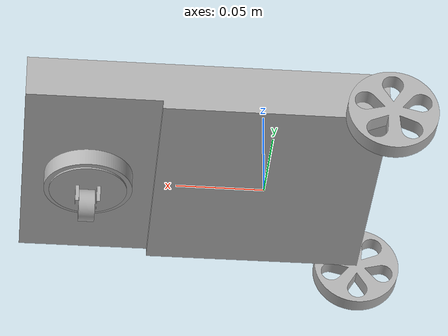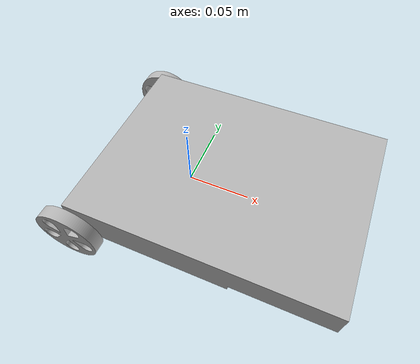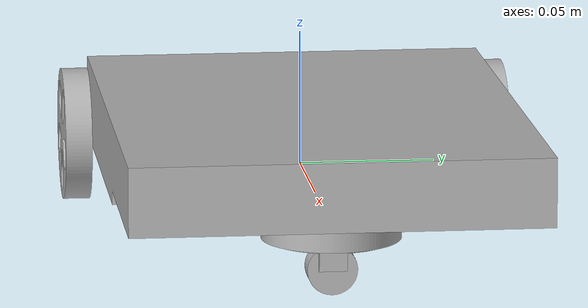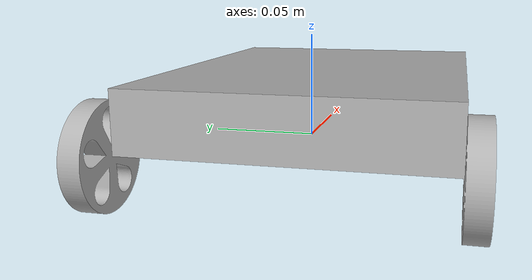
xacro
<?xml version="1.0" ?>
<robot name="test_assembly" xmlns:xacro="http://www.ros.org/wiki/xacro">

  <xacro:include filename="$(find test_assembly_description)/urdf/materials.xacro" />
  <xacro:include filename="$(find test_assembly_description)/urdf/test_assembly.trans" />
  <xacro:include filename="$(find test_assembly_description)/urdf/test_assembly.gazebo" />

  <link name="base_link">
    <inertial>
      <origin xyz="0.03333333333333332 1.0779196465456927e-17 0.01583333333333333" rpy="0 0 0"/>
      <mass value="0.8943749999999999"/>
      <inertia ixx="0.001738" iyy="0.002965" izz="0.004581" ixy="0.0" iyz="0.0" ixz="-5e-05"/>
    </inertial>
    <visual>
      <origin xyz="0 0 0" rpy="0 0 0"/>
      <geometry>
        <mesh filename="package://test_assembly_description/meshes/base_link.stl" scale="0.001 0.001 0.001"/>
      </geometry>
      <material name="silver"/>
    </visual>
    <collision>
      <origin xyz="0 0 0" rpy="0 0 0"/>
      <geometry>
        <mesh filename="package://test_assembly_description/meshes/base_link.stl" scale="0.001 0.001 0.001"/>
      </geometry>
    </collision>
  </link>

  <link name="wheel1_1">
    <inertial>
      <origin xyz="-1.3877787807814457e-17 -0.0050000000000000044 1.9686697523000058e-17" rpy="0 0 0"/>
      <mass value="0.0015782658447809456"/>
      <inertia ixx="0.0" iyy="1e-06" izz="0.0" ixy="0.0" iyz="0.0" ixz="0.0"/>
    </inertial>
    <visual>
      <origin xyz="0.0625 0.075 -0.0" rpy="0 0 0"/>
      <geometry>
        <mesh filename="package://test_assembly_description/meshes/wheel1_1.stl" scale="0.001 0.001 0.001"/>
      </geometry>
      <material name="silver"/>
    </visual>
    <collision>
      <origin xyz="0.0625 0.075 -0.0" rpy="0 0 0"/>
      <geometry>
        <mesh filename="package://test_assembly_description/meshes/wheel1_1.stl" scale="0.001 0.001 0.001"/>
      </geometry>
    </collision>
  </link>

  <link name="wheel2_1">
    <inertial>
      <origin xyz="-1.3877787807814457e-17 0.0050000000000000044 -2.856848172000131e-17" rpy="0 0 0"/>
      <mass value="0.0015782658447809456"/>
      <inertia ixx="0.0" iyy="1e-06" izz="0.0" ixy="0.0" iyz="0.0" ixz="-0.0"/>
    </inertial>
    <visual>
      <origin xyz="0.0625 -0.075 0.0" rpy="0 0 0"/>
      <geometry>
        <mesh filename="package://test_assembly_description/meshes/wheel2_1.stl" scale="0.001 0.001 0.001"/>
      </geometry>
      <material name="silver"/>
    </visual>
    <collision>
      <origin xyz="0.0625 -0.075 0.0" rpy="0 0 0"/>
      <geometry>
        <mesh filename="package://test_assembly_description/meshes/wheel2_1.stl" scale="0.001 0.001 0.001"/>
      </geometry>
    </collision>
  </link>

  <link name="castor_wheel_Component1_v2_1">
    <inertial>
      <origin xyz="0.0 1.1853919148245112e-17 -0.0032243186582809214" rpy="0 0 0"/>
      <mass value="0.009530712465048427"/>
      <inertia ixx="2e-06" iyy="2e-06" izz="4e-06" ixy="0.0" iyz="0.0" ixz="0.0"/>
    </inertial>
    <visual>
      <origin xyz="-0.1 -0.0 -0.005" rpy="0 0 0"/>
      <geometry>
        <mesh filename="package://test_assembly_description/meshes/castor_wheel_Component1_v2_1.stl" scale="0.001 0.001 0.001"/>
      </geometry>
      <material name="silver"/>
    </visual>
    <collision>
      <origin xyz="-0.1 -0.0 -0.005" rpy="0 0 0"/>
      <geometry>
        <mesh filename="package://test_assembly_description/meshes/castor_wheel_Component1_v2_1.stl" scale="0.001 0.001 0.001"/>
      </geometry>
    </collision>
  </link>

  <link name="castor_wheel_Component2_v3_1">
    <inertial>
      <origin xyz="0.0 -4.096460771958213e-11 -0.00587487563523713" rpy="0 0 0"/>
      <mass value="0.008482813487624726"/>
      <inertia ixx="1e-06" iyy="1e-06" izz="2e-06" ixy="-0.0" iyz="-0.0" ixz="-0.0"/>
    </inertial>
    <visual>
      <origin xyz="-0.1 -0.0 -0.002" rpy="0 0 0"/>
      <geometry>
        <mesh filename="package://test_assembly_description/meshes/castor_wheel_Component2_v3_1.stl" scale="0.001 0.001 0.001"/>
      </geometry>
      <material name="silver"/>
    </visual>
    <collision>
      <origin xyz="-0.1 -0.0 -0.002" rpy="0 0 0"/>
      <geometry>
        <mesh filename="package://test_assembly_description/meshes/castor_wheel_Component2_v3_1.stl" scale="0.001 0.001 0.001"/>
      </geometry>
    </collision>
  </link>

  <link name="castor_wheel_Component3_v4_1">
    <inertial>
      <origin xyz="-0.004499999925494144 -8.195638606885871e-10 -1.734723475976807e-17" rpy="0 0 0"/>
      <mass value="0.0023245744294116788"/>
      <inertia ixx="0.0" iyy="0.0" izz="0.0" ixy="0.0" iyz="0.0" ixz="-0.0"/>
    </inertial>
    <visual>
      <origin xyz="-0.105 0.0 0.016" rpy="0 0 0"/>
      <geometry>
        <mesh filename="package://test_assembly_description/meshes/castor_wheel_Component3_v4_1.stl" scale="0.001 0.001 0.001"/>
      </geometry>
      <material name="silver"/>
    </visual>
    <collision>
      <origin xyz="-0.105 0.0 0.016" rpy="0 0 0"/>
      <geometry>
        <mesh filename="package://test_assembly_description/meshes/castor_wheel_Component3_v4_1.stl" scale="0.001 0.001 0.001"/>
      </geometry>
    </collision>
  </link>

  <joint name="Revolute_1" type="continuous">
    <origin xyz="-0.0625 -0.075 0.0" rpy="0 0 0"/>
    <parent link="base_link"/>
    <child link="wheel1_1"/>
    <axis xyz="0.0 -1.0 0.0"/>
  </joint>

  <joint name="Revolute_2" type="continuous">
    <origin xyz="-0.0625 0.075 0.0" rpy="0 0 0"/>
    <parent link="base_link"/>
    <child link="wheel2_1"/>
    <axis xyz="0.0 1.0 0.0"/>
  </joint>

  <joint name="fixed_3" type="fixed">
    <origin xyz="0.1 0.0 0.005" rpy="0 0 0"/>
    <parent link="base_link"/>
    <child link="castor_wheel_Component1_v2_1"/>
  </joint>

  <joint name="revolute_10" type="continuous">
    <origin xyz="0.0 0.0 -0.003" rpy="0 0 0"/>
    <parent link="castor_wheel_Component1_v2_1"/>
    <child link="castor_wheel_Component2_v3_1"/>
    <axis xyz="0.0 0.0 -1.0"/>
  </joint>

  <joint name="revolute_13" type="continuous">
    <origin xyz="0.005 -0.0 -0.018" rpy="0 0 0"/>
    <parent link="castor_wheel_Component2_v3_1"/>
    <child link="castor_wheel_Component3_v4_1"/>
    <axis xyz="-1.0 0.0 0.0"/>
  </joint>

</robot>

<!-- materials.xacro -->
<robot name="test_assembly" xmlns:xacro="http://www.ros.org/wiki/xacro" >

<material name="silver">
  <color rgba="0.700 0.700 0.700 1.000"/>
</material>

</robot>

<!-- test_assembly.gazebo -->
<robot name="test_assembly" xmlns:xacro="http://www.ros.org/wiki/xacro" >

<xacro:property name="body_color" value="Gazebo/Silver" />

<gazebo>
  <plugin name="control" filename="libgazebo_ros_control.so"/>
</gazebo>
<gazebo reference="base_link">
  <material>${body_color}</material>
  <mu1>0.2</mu1>
  <mu2>0.2</mu2>
  <selfCollide>true</selfCollide>
  <gravity>true</gravity>
</gazebo>

<gazebo reference="wheel1_1">
  <material>${body_color}</material>
  <mu1>0.2</mu1>
  <mu2>0.2</mu2>
  <selfCollide>true</selfCollide>
</gazebo>

<gazebo reference="wheel2_1">
  <material>${body_color}</material>
  <mu1>0.2</mu1>
  <mu2>0.2</mu2>
  <selfCollide>true</selfCollide>
</gazebo>

<gazebo reference="castor_wheel_Component1_v2_1">
  <material>${body_color}</material>
  <mu1>0.2</mu1>
  <mu2>0.2</mu2>
  <selfCollide>true</selfCollide>
</gazebo>

<gazebo reference="castor_wheel_Component2_v3_1">
  <material>${body_color}</material>
  <mu1>0.2</mu1>
  <mu2>0.2</mu2>
  <selfCollide>true</selfCollide>
</gazebo>

<gazebo reference="castor_wheel_Component3_v4_1">
  <material>${body_color}</material>
  <mu1>0.2</mu1>
  <mu2>0.2</mu2>
  <selfCollide>true</selfCollide>
</gazebo>

</robot>
